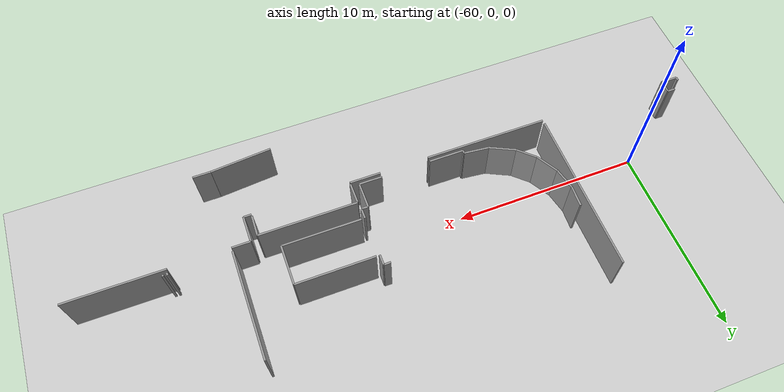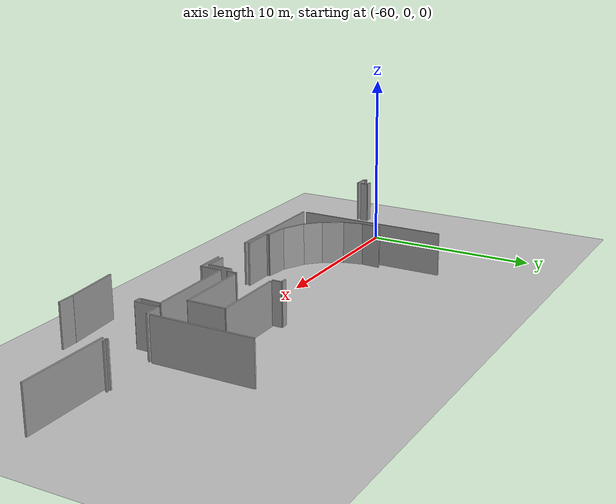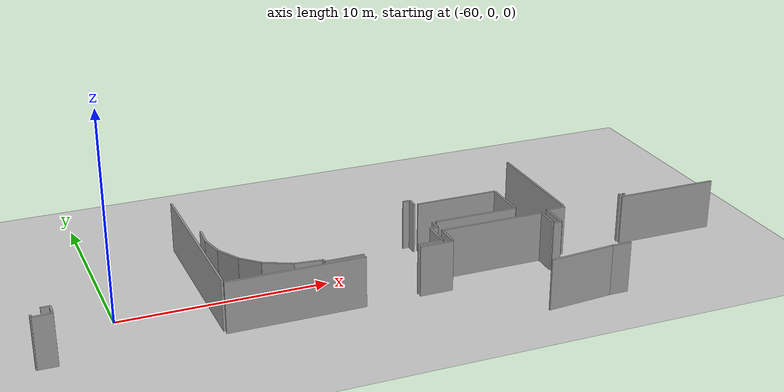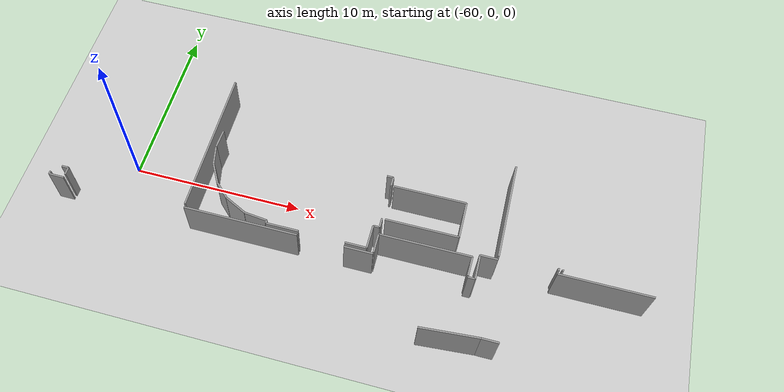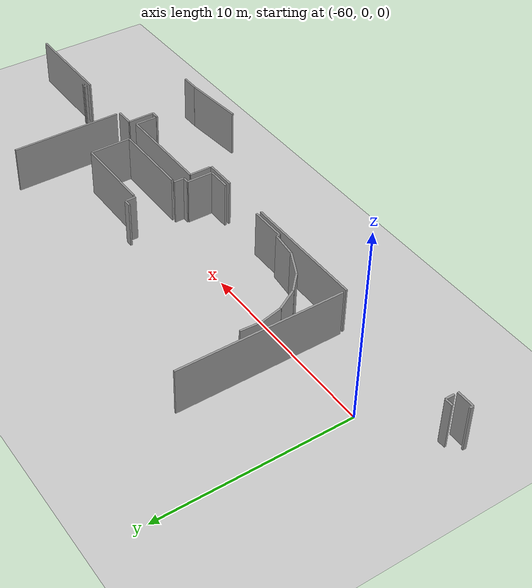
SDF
<sdf version="1.6">
 <world name="default">
  <model name="ground_plane">
   <static>1</static>
   <link name="link">
    <collision name="collision">
     <geometry><plane><normal>0 0 1</normal><size>100 100</size></plane></geometry>
     <surface><friction><ode><mu>100</mu><mu2>50</mu2></ode></friction></surface>
    </collision>
    <visual name="visual">
     <cast_shadows>0</cast_shadows>
     <geometry><plane><normal>0 0 1</normal><size>100 100</size></plane></geometry>
     <material>
      <script><uri>file://media/materials/scripts/gazebo.material</uri><name>Gazebo/Grey</name></script>
     </material>
    </visual>
   </link>
  </model>
  <model name="0510032218_A-40">
   <static>1</static>
   <link name="Wall_256">
    <collision name="Wall_256_Collision">
     <geometry><box><size>0.186462729667 0.1 2.5</size></box></geometry>
     <pose>0.0932313648336 0 1.25 0 0 0</pose>
    </collision>
    <visual name="Wall_256_Visual">
     <pose>0.0932313648336 0 1.25 0 0 0</pose>
     <geometry><box><size>0.186462729667 0.1 2.5</size></box></geometry>
     <material>
      <script><uri>file://media/materials/scripts/gazebo.material</uri><name>Gazebo/Grey</name></script>
      <ambient>1 1 1 1</ambient>
     </material>
    </visual>
    <pose>10.9974550186 -52.3401770698 0 0 0 -1.57079632679</pose>
   </link>
   <link name="Wall_257">
    <collision name="Wall_257_Collision">
     <geometry><box><size>0.905404118935 0.1 2.5</size></box></geometry>
     <pose>0.452702059468 0 1.25 0 0 0</pose>
    </collision>
    <visual name="Wall_257_Visual">
     <pose>0.452702059468 0 1.25 0 0 0</pose>
     <geometry><box><size>0.905404118935 0.1 2.5</size></box></geometry>
     <material>
      <script><uri>file://media/materials/scripts/gazebo.material</uri><name>Gazebo/Grey</name></script>
      <ambient>1 1 1 1</ambient>
     </material>
    </visual>
    <pose>10.9974550186 -52.5266397994 0 0 0 0.0</pose>
   </link>
   <link name="Wall_258">
    <collision name="Wall_258_Collision">
     <geometry><box><size>6.54320439184 0.1 2.5</size></box></geometry>
     <pose>3.27160219592 0 1.25 0 0 0</pose>
    </collision>
    <visual name="Wall_258_Visual">
     <pose>3.27160219592 0 1.25 0 0 0</pose>
     <geometry><box><size>6.54320439184 0.1 2.5</size></box></geometry>
     <material>
      <script><uri>file://media/materials/scripts/gazebo.material</uri><name>Gazebo/Grey</name></script>
      <ambient>1 1 1 1</ambient>
     </material>
    </visual>
    <pose>19.1130898359 -52.5266397994 0 0 0 0.0</pose>
   </link>
   <link name="Wall_259">
    <collision name="Wall_259_Collision">
     <geometry><box><size>1.62764573351 0.1 2.5</size></box></geometry>
     <pose>0.813822866753 0 1.25 0 0 0</pose>
    </collision>
    <visual name="Wall_259_Visual">
     <pose>0.813822866753 0 1.25 0 0 0</pose>
     <geometry><box><size>1.62764573351 0.1 2.5</size></box></geometry>
     <material>
      <script><uri>file://media/materials/scripts/gazebo.material</uri><name>Gazebo/Grey</name></script>
      <ambient>1 1 1 1</ambient>
     </material>
    </visual>
    <pose>28.2770539143 -52.5266397994 0 0 0 0.0</pose>
   </link>
   <link name="Wall_260">
    <collision name="Wall_260_Collision">
     <geometry><box><size>0.410243391616 0.1 2.5</size></box></geometry>
     <pose>0.205121695808 0 1.25 0 0 0</pose>
    </collision>
    <visual name="Wall_260_Visual">
     <pose>0.205121695808 0 1.25 0 0 0</pose>
     <geometry><box><size>0.410243391616 0.1 2.5</size></box></geometry>
     <material>
      <script><uri>file://media/materials/scripts/gazebo.material</uri><name>Gazebo/Grey</name></script>
      <ambient>1 1 1 1</ambient>
     </material>
    </visual>
    <pose>35.0562244153 -52.5266397994 0 0 0 0.0</pose>
   </link>
   <link name="Wall_261">
    <collision name="Wall_261_Collision">
     <geometry><box><size>1.4276013074 0.1 2.5</size></box></geometry>
     <pose>0.713800653698 0 1.25 0 0 0</pose>
    </collision>
    <visual name="Wall_261_Visual">
     <pose>0.713800653698 0 1.25 0 0 0</pose>
     <geometry><box><size>1.4276013074 0.1 2.5</size></box></geometry>
     <material>
      <script><uri>file://media/materials/scripts/gazebo.material</uri><name>Gazebo/Grey</name></script>
      <ambient>1 1 1 1</ambient>
     </material>
    </visual>
    <pose>35.4664678069 -52.5266397994 0 0 0 1.57079632679</pose>
   </link>
   <link name="Wall_262">
    <collision name="Wall_262_Collision">
     <geometry><box><size>0.965442833116 0.1 2.5</size></box></geometry>
     <pose>0.482721416558 0 1.25 0 0 0</pose>
    </collision>
    <visual name="Wall_262_Visual">
     <pose>0.482721416558 0 1.25 0 0 0</pose>
     <geometry><box><size>0.965442833116 0.1 2.5</size></box></geometry>
     <material>
      <script><uri>file://media/materials/scripts/gazebo.material</uri><name>Gazebo/Grey</name></script>
      <ambient>1 1 1 1</ambient>
     </material>
    </visual>
    <pose>35.4664678069 -51.0990384921 0 0 0 0.0</pose>
   </link>
   <link name="Wall_263">
    <collision name="Wall_263_Collision">
     <geometry><box><size>5.12486910164 0.1 2.5</size></box></geometry>
     <pose>2.56243455082 0 1.25 0 0 0</pose>
    </collision>
    <visual name="Wall_263_Visual">
     <pose>2.56243455082 0 1.25 0 0 0</pose>
     <geometry><box><size>5.12486910164 0.1 2.5</size></box></geometry>
     <material>
      <script><uri>file://media/materials/scripts/gazebo.material</uri><name>Gazebo/Grey</name></script>
      <ambient>1 1 1 1</ambient>
     </material>
    </visual>
    <pose>39.6024117031 -51.0990384921 0 0 0 0.0</pose>
   </link>
   <link name="Wall_283">
    <collision name="Wall_283_Collision">
     <geometry><box><size>0.950718750992 0.1 2.5</size></box></geometry>
     <pose>0.475359375496 0 1.25 0 0 0</pose>
    </collision>
    <visual name="Wall_283_Visual">
     <pose>0.475359375496 0 1.25 0 0 0</pose>
     <geometry><box><size>0.950718750992 0.1 2.5</size></box></geometry>
     <material>
      <script><uri>file://media/materials/scripts/gazebo.material</uri><name>Gazebo/Grey</name></script>
      <ambient>1 1 1 1</ambient>
     </material>
    </visual>
    <pose>37.2999968267 -55.6711198553 0 0 0 3.14159265359</pose>
   </link>
   <link name="Wall_284">
    <collision name="Wall_284_Collision">
     <geometry><box><size>3.23968315707 0.1 2.5</size></box></geometry>
     <pose>1.61984157854 0 1.25 0 0 0</pose>
    </collision>
    <visual name="Wall_284_Visual">
     <pose>1.61984157854 0 1.25 0 0 0</pose>
     <geometry><box><size>3.23968315707 0.1 2.5</size></box></geometry>
     <material>
      <script><uri>file://media/materials/scripts/gazebo.material</uri><name>Gazebo/Grey</name></script>
      <ambient>1 1 1 1</ambient>
     </material>
    </visual>
    <pose>36.3492780757 -55.6711198553 0 0 0 -3.05804144964</pose>
   </link>
   <link name="Wall_368">
    <collision name="Wall_368_Collision">
     <geometry><box><size>8.66588392092 0.1 2.5</size></box></geometry>
     <pose>4.33294196046 0 1.25 0 0 0</pose>
    </collision>
    <visual name="Wall_368_Visual">
     <pose>4.33294196046 0 1.25 0 0 0</pose>
     <geometry><box><size>8.66588392092 0.1 2.5</size></box></geometry>
     <material>
      <script><uri>file://media/materials/scripts/gazebo.material</uri><name>Gazebo/Grey</name></script>
      <ambient>1 1 1 1</ambient>
     </material>
    </visual>
    <pose>19.0963348459 -52.3196141275 0 0 0 1.57079632679</pose>
   </link>
   <link name="Wall_371">
    <collision name="Wall_371_Collision">
     <geometry><box><size>0.412908958208 0.1 2.5</size></box></geometry>
     <pose>0.206454479104 0 1.25 0 0 0</pose>
    </collision>
    <visual name="Wall_371_Visual">
     <pose>0.206454479104 0 1.25 0 0 0</pose>
     <geometry><box><size>0.412908958208 0.1 2.5</size></box></geometry>
     <material>
      <script><uri>file://media/materials/scripts/gazebo.material</uri><name>Gazebo/Grey</name></script>
      <ambient>1 1 1 1</ambient>
     </material>
    </visual>
    <pose>11.4764954146 -51.8626598547 0 0 0 0.0</pose>
   </link>
   <link name="Wall_372">
    <collision name="Wall_372_Collision">
     <geometry><box><size>0.456965291087 0.1 2.5</size></box></geometry>
     <pose>0.228482645544 0 1.25 0 0 0</pose>
    </collision>
    <visual name="Wall_372_Visual">
     <pose>0.228482645544 0 1.25 0 0 0</pose>
     <geometry><box><size>0.456965291087 0.1 2.5</size></box></geometry>
     <material>
      <script><uri>file://media/materials/scripts/gazebo.material</uri><name>Gazebo/Grey</name></script>
      <ambient>1 1 1 1</ambient>
     </material>
    </visual>
    <pose>11.8894043728 -51.8626598547 0 0 0 -1.57774065961</pose>
   </link>
   <link name="Wall_373">
    <collision name="Wall_373_Collision">
     <geometry><box><size>1.2264144956 0.1 2.5</size></box></geometry>
     <pose>0.613207247802 0 1.25 0 0 0</pose>
    </collision>
    <visual name="Wall_373_Visual">
     <pose>0.613207247802 0 1.25 0 0 0</pose>
     <geometry><box><size>1.2264144956 0.1 2.5</size></box></geometry>
     <material>
      <script><uri>file://media/materials/scripts/gazebo.material</uri><name>Gazebo/Grey</name></script>
      <ambient>1 1 1 1</ambient>
     </material>
    </visual>
    <pose>29.4910290991 -52.2826769904 0 0 0 3.14159265359</pose>
   </link>
   <link name="Wall_374">
    <collision name="Wall_374_Collision">
     <geometry><box><size>1.86031161743 0.1 2.5</size></box></geometry>
     <pose>0.930155808714 0 1.25 0 0 0</pose>
    </collision>
    <visual name="Wall_374_Visual">
     <pose>0.930155808714 0 1.25 0 0 0</pose>
     <geometry><box><size>1.86031161743 0.1 2.5</size></box></geometry>
     <material>
      <script><uri>file://media/materials/scripts/gazebo.material</uri><name>Gazebo/Grey</name></script>
      <ambient>1 1 1 1</ambient>
     </material>
    </visual>
    <pose>25.6548979786 -52.2826769904 0 0 0 3.14159265359</pose>
   </link>
   <link name="Wall_375">
    <collision name="Wall_375_Collision">
     <geometry><box><size>0.167549900041 0.1 2.5</size></box></geometry>
     <pose>0.0837749500206 0 1.25 0 0 0</pose>
    </collision>
    <visual name="Wall_375_Visual">
     <pose>0.0837749500206 0 1.25 0 0 0</pose>
     <geometry><box><size>0.167549900041 0.1 2.5</size></box></geometry>
     <material>
      <script><uri>file://media/materials/scripts/gazebo.material</uri><name>Gazebo/Grey</name></script>
      <ambient>1 1 1 1</ambient>
     </material>
    </visual>
    <pose>23.7945863612 -52.2826769904 0 0 0 1.57079632679</pose>
   </link>
   <link name="Wall_376">
    <collision name="Wall_376_Collision">
     <geometry><box><size>1.3301752403 0.1 2.5</size></box></geometry>
     <pose>0.665087620149 0 1.25 0 0 0</pose>
    </collision>
    <visual name="Wall_376_Visual">
     <pose>0.665087620149 0 1.25 0 0 0</pose>
     <geometry><box><size>1.3301752403 0.1 2.5</size></box></geometry>
     <material>
      <script><uri>file://media/materials/scripts/gazebo.material</uri><name>Gazebo/Grey</name></script>
      <ambient>1 1 1 1</ambient>
     </material>
    </visual>
    <pose>23.7945863612 -52.1151270904 0 0 0 3.03412842436</pose>
   </link>
   <link name="Wall_377">
    <collision name="Wall_377_Collision">
     <geometry><box><size>1.42597099026 0.1 2.5</size></box></geometry>
     <pose>0.712985495132 0 1.25 0 0 0</pose>
    </collision>
    <visual name="Wall_377_Visual">
     <pose>0.712985495132 0 1.25 0 0 0</pose>
     <geometry><box><size>1.42597099026 0.1 2.5</size></box></geometry>
     <material>
      <script><uri>file://media/materials/scripts/gazebo.material</uri><name>Gazebo/Grey</name></script>
      <ambient>1 1 1 1</ambient>
     </material>
    </visual>
    <pose>22.4720845365 -51.9724558119 0 0 0 2.68312015762</pose>
   </link>
   <link name="Wall_378">
    <collision name="Wall_378_Collision">
     <geometry><box><size>1.13320693689 0.1 2.5</size></box></geometry>
     <pose>0.566603468444 0 1.25 0 0 0</pose>
    </collision>
    <visual name="Wall_378_Visual">
     <pose>0.566603468444 0 1.25 0 0 0</pose>
     <geometry><box><size>1.13320693689 0.1 2.5</size></box></geometry>
     <material>
      <script><uri>file://media/materials/scripts/gazebo.material</uri><name>Gazebo/Grey</name></script>
      <ambient>1 1 1 1</ambient>
     </material>
    </visual>
    <pose>21.193374163 -51.3413511884 0 0 0 2.37670971347</pose>
   </link>
   <link name="Wall_379">
    <collision name="Wall_379_Collision">
     <geometry><box><size>1.27496078018 0.1 2.5</size></box></geometry>
     <pose>0.63748039009 0 1.25 0 0 0</pose>
    </collision>
    <visual name="Wall_379_Visual">
     <pose>0.63748039009 0 1.25 0 0 0</pose>
     <geometry><box><size>1.27496078018 0.1 2.5</size></box></geometry>
     <material>
      <script><uri>file://media/materials/scripts/gazebo.material</uri><name>Gazebo/Grey</name></script>
      <ambient>1 1 1 1</ambient>
     </material>
    </visual>
    <pose>20.3758068099 -50.5566591565 0 0 0 2.07880379877</pose>
   </link>
   <link name="Wall_380">
    <collision name="Wall_380_Collision">
     <geometry><box><size>1.16255566116 0.1 2.5</size></box></geometry>
     <pose>0.581277830578 0 1.25 0 0 0</pose>
    </collision>
    <visual name="Wall_380_Visual">
     <pose>0.581277830578 0 1.25 0 0 0</pose>
     <geometry><box><size>1.16255566116 0.1 2.5</size></box></geometry>
     <material>
      <script><uri>file://media/materials/scripts/gazebo.material</uri><name>Gazebo/Grey</name></script>
      <ambient>1 1 1 1</ambient>
     </material>
    </visual>
    <pose>19.7556183163 -49.4427061847 0 0 0 1.78478742901</pose>
   </link>
   <link name="Wall_381">
    <collision name="Wall_381_Collision">
     <geometry><box><size>1.11013339445 0.1 2.5</size></box></geometry>
     <pose>0.555066697223 0 1.25 0 0 0</pose>
    </collision>
    <visual name="Wall_381_Visual">
     <pose>0.555066697223 0 1.25 0 0 0</pose>
     <geometry><box><size>1.11013339445 0.1 2.5</size></box></geometry>
     <material>
      <script><uri>file://media/materials/scripts/gazebo.material</uri><name>Gazebo/Grey</name></script>
      <ambient>1 1 1 1</ambient>
     </material>
    </visual>
    <pose>19.5087360772 -48.3066670898 0 0 0 1.51645848038</pose>
   </link>
   <link name="Wall_391">
    <collision name="Wall_391_Collision">
     <geometry><box><size>0.364674896075 0.1 2.5</size></box></geometry>
     <pose>0.182337448037 0 1.25 0 0 0</pose>
    </collision>
    <visual name="Wall_391_Visual">
     <pose>0.182337448037 0 1.25 0 0 0</pose>
     <geometry><box><size>0.364674896075 0.1 2.5</size></box></geometry>
     <material>
      <script><uri>file://media/materials/scripts/gazebo.material</uri><name>Gazebo/Grey</name></script>
      <ambient>1 1 1 1</ambient>
     </material>
    </visual>
    <pose>29.4954717101 -47.6310094247 0 0 0 0.0</pose>
   </link>
   <link name="Wall_392">
    <collision name="Wall_392_Collision">
     <geometry><box><size>0.55672262241 0.1 2.5</size></box></geometry>
     <pose>0.278361311205 0 1.25 0 0 0</pose>
    </collision>
    <visual name="Wall_392_Visual">
     <pose>0.278361311205 0 1.25 0 0 0</pose>
     <geometry><box><size>0.55672262241 0.1 2.5</size></box></geometry>
     <material>
      <script><uri>file://media/materials/scripts/gazebo.material</uri><name>Gazebo/Grey</name></script>
      <ambient>1 1 1 1</ambient>
     </material>
    </visual>
    <pose>29.8601466062 -47.6310094247 0 0 0 -1.57079632679</pose>
   </link>
   <link name="Wall_393">
    <collision name="Wall_393_Collision">
     <geometry><box><size>0.558245803319 0.1 2.5</size></box></geometry>
     <pose>0.27912290166 0 1.25 0 0 0</pose>
    </collision>
    <visual name="Wall_393_Visual">
     <pose>0.27912290166 0 1.25 0 0 0</pose>
     <geometry><box><size>0.558245803319 0.1 2.5</size></box></geometry>
     <material>
      <script><uri>file://media/materials/scripts/gazebo.material</uri><name>Gazebo/Grey</name></script>
      <ambient>1 1 1 1</ambient>
     </material>
    </visual>
    <pose>29.8601466062 -50.3345286072 0 0 0 -1.57079632679</pose>
   </link>
   <link name="Wall_394">
    <collision name="Wall_394_Collision">
     <geometry><box><size>0.356297401073 0.1 2.5</size></box></geometry>
     <pose>0.178148700536 0 1.25 0 0 0</pose>
    </collision>
    <visual name="Wall_394_Visual">
     <pose>0.178148700536 0 1.25 0 0 0</pose>
     <geometry><box><size>0.356297401073 0.1 2.5</size></box></geometry>
     <material>
      <script><uri>file://media/materials/scripts/gazebo.material</uri><name>Gazebo/Grey</name></script>
      <ambient>1 1 1 1</ambient>
     </material>
    </visual>
    <pose>29.8601466062 -50.8927744106 0 0 0 3.14159265359</pose>
   </link>
   <link name="Wall_395">
    <collision name="Wall_395_Collision">
     <geometry><box><size>1.38996170332 0.1 2.5</size></box></geometry>
     <pose>0.69498085166 0 1.25 0 0 0</pose>
    </collision>
    <visual name="Wall_395_Visual">
     <pose>0.69498085166 0 1.25 0 0 0</pose>
     <geometry><box><size>1.38996170332 0.1 2.5</size></box></geometry>
     <material>
      <script><uri>file://media/materials/scripts/gazebo.material</uri><name>Gazebo/Grey</name></script>
      <ambient>1 1 1 1</ambient>
     </material>
    </visual>
    <pose>29.5038492051 -50.8927744106 0 0 0 -1.58001980952</pose>
   </link>
   <link name="Wall_396">
    <collision name="Wall_396_Collision">
     <geometry><box><size>4.13289753435 0.1 2.5</size></box></geometry>
     <pose>2.06644876718 0 1.25 0 0 0</pose>
    </collision>
    <visual name="Wall_396_Visual">
     <pose>2.06644876718 0 1.25 0 0 0</pose>
     <geometry><box><size>4.13289753435 0.1 2.5</size></box></geometry>
     <material>
      <script><uri>file://media/materials/scripts/gazebo.material</uri><name>Gazebo/Grey</name></script>
      <ambient>1 1 1 1</ambient>
     </material>
    </visual>
    <pose>34.1664329007 -50.3417637166 0 0 0 3.14159265359</pose>
   </link>
   <link name="Wall_397">
    <collision name="Wall_397_Collision">
     <geometry><box><size>4.13289753435 0.1 2.5</size></box></geometry>
     <pose>2.06644876718 0 1.25 0 0 0</pose>
    </collision>
    <visual name="Wall_397_Visual">
     <pose>2.06644876718 0 1.25 0 0 0</pose>
     <geometry><box><size>4.13289753435 0.1 2.5</size></box></geometry>
     <material>
      <script><uri>file://media/materials/scripts/gazebo.material</uri><name>Gazebo/Grey</name></script>
      <ambient>1 1 1 1</ambient>
     </material>
    </visual>
    <pose>30.0335353664 -48.1771967125 0 0 0 0.0</pose>
   </link>
   <link name="Wall_398">
    <collision name="Wall_398_Collision">
     <geometry><box><size>2.16456700409 0.1 2.5</size></box></geometry>
     <pose>1.08228350205 0 1.25 0 0 0</pose>
    </collision>
    <visual name="Wall_398_Visual">
     <pose>1.08228350205 0 1.25 0 0 0</pose>
     <geometry><box><size>2.16456700409 0.1 2.5</size></box></geometry>
     <material>
      <script><uri>file://media/materials/scripts/gazebo.material</uri><name>Gazebo/Grey</name></script>
      <ambient>1 1 1 1</ambient>
     </material>
    </visual>
    <pose>34.1664329007 -48.1771967125 0 0 0 -1.57079632679</pose>
   </link>
   <link name="Wall_399">
    <collision name="Wall_399_Collision">
     <geometry><box><size>1.13603909498 0.1 2.5</size></box></geometry>
     <pose>0.568019547488 0 1.25 0 0 0</pose>
    </collision>
    <visual name="Wall_399_Visual">
     <pose>0.568019547488 0 1.25 0 0 0</pose>
     <geometry><box><size>1.13603909498 0.1 2.5</size></box></geometry>
     <material>
      <script><uri>file://media/materials/scripts/gazebo.material</uri><name>Gazebo/Grey</name></script>
      <ambient>1 1 1 1</ambient>
     </material>
    </visual>
    <pose>29.9120616888 -52.4389299654 0 0 0 1.57079632679</pose>
   </link>
   <link name="Wall_400">
    <collision name="Wall_400_Collision">
     <geometry><box><size>5.17449941294 0.1 2.5</size></box></geometry>
     <pose>2.58724970647 0 1.25 0 0 0</pose>
    </collision>
    <visual name="Wall_400_Visual">
     <pose>2.58724970647 0 1.25 0 0 0</pose>
     <geometry><box><size>5.17449941294 0.1 2.5</size></box></geometry>
     <material>
      <script><uri>file://media/materials/scripts/gazebo.material</uri><name>Gazebo/Grey</name></script>
      <ambient>1 1 1 1</ambient>
     </material>
    </visual>
    <pose>29.9120616888 -51.3028908704 0 0 0 0.0</pose>
   </link>
   <link name="Wall_401">
    <collision name="Wall_401_Collision">
     <geometry><box><size>1.13633416232 0.1 2.5</size></box></geometry>
     <pose>0.568167081161 0 1.25 0 0 0</pose>
    </collision>
    <visual name="Wall_401_Visual">
     <pose>0.568167081161 0 1.25 0 0 0</pose>
     <geometry><box><size>1.13633416232 0.1 2.5</size></box></geometry>
     <material>
      <script><uri>file://media/materials/scripts/gazebo.material</uri><name>Gazebo/Grey</name></script>
      <ambient>1 1 1 1</ambient>
     </material>
    </visual>
    <pose>35.0865611018 -51.3028908704 0 0 0 -1.59358567681</pose>
   </link>
   <link name="Wall_402">
    <collision name="Wall_402_Collision">
     <geometry><box><size>5.81893186939 0.1 2.5</size></box></geometry>
     <pose>2.90946593469 0 1.25 0 0 0</pose>
    </collision>
    <visual name="Wall_402_Visual">
     <pose>2.90946593469 0 1.25 0 0 0</pose>
     <geometry><box><size>5.81893186939 0.1 2.5</size></box></geometry>
     <material>
      <script><uri>file://media/materials/scripts/gazebo.material</uri><name>Gazebo/Grey</name></script>
      <ambient>1 1 1 1</ambient>
     </material>
    </visual>
    <pose>36.4347031384 -50.9039444039 0 0 0 1.57079632679</pose>
   </link>
   <link name="Wall_405">
    <collision name="Wall_405_Collision">
     <geometry><box><size>0.145368768542 0.1 2.5</size></box></geometry>
     <pose>0.0726843842708 0 1.25 0 0 0</pose>
    </collision>
    <visual name="Wall_405_Visual">
     <pose>0.0726843842708 0 1.25 0 0 0</pose>
     <geometry><box><size>0.145368768542 0.1 2.5</size></box></geometry>
     <material>
      <script><uri>file://media/materials/scripts/gazebo.material</uri><name>Gazebo/Grey</name></script>
      <ambient>1 1 1 1</ambient>
     </material>
    </visual>
    <pose>39.6373179323 -50.7586075588 0 0 0 -1.549838697</pose>
   </link>
   <link name="Wall_412">
    <collision name="Wall_412_Collision">
     <geometry><box><size>0.0936756259322 0.1 2.5</size></box></geometry>
     <pose>0.0468378129661 0 1.25 0 0 0</pose>
    </collision>
    <visual name="Wall_412_Visual">
     <pose>0.0468378129661 0 1.25 0 0 0</pose>
     <geometry><box><size>0.0936756259322 0.1 2.5</size></box></geometry>
     <material>
      <script><uri>file://media/materials/scripts/gazebo.material</uri><name>Gazebo/Grey</name></script>
      <ambient>1 1 1 1</ambient>
     </material>
    </visual>
    <pose>39.8586868911 -50.8719576048 0 0 0 1.57079632679</pose>
   </link>
   <pose>-74.8 49.7517929109 0 0 0 0</pose>
  </model>
 </world>
</sdf>
